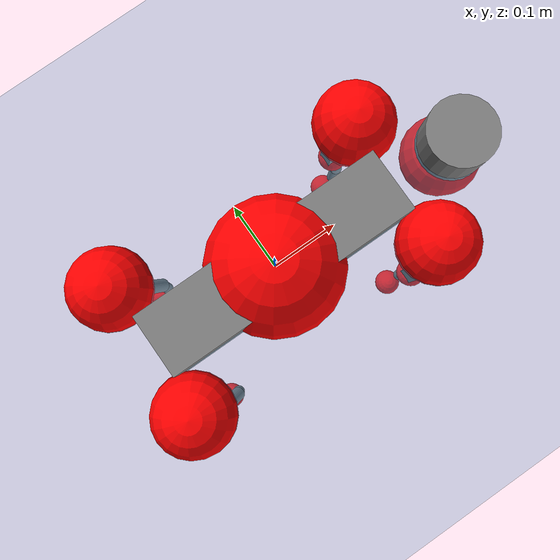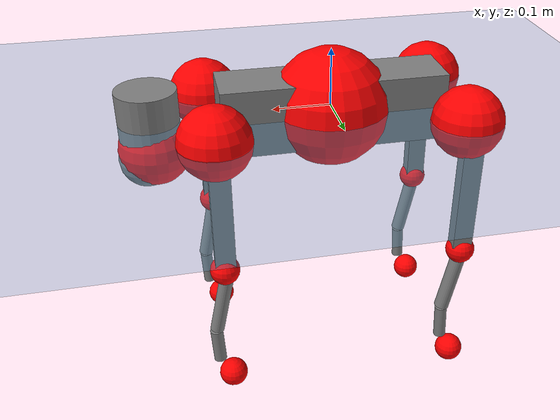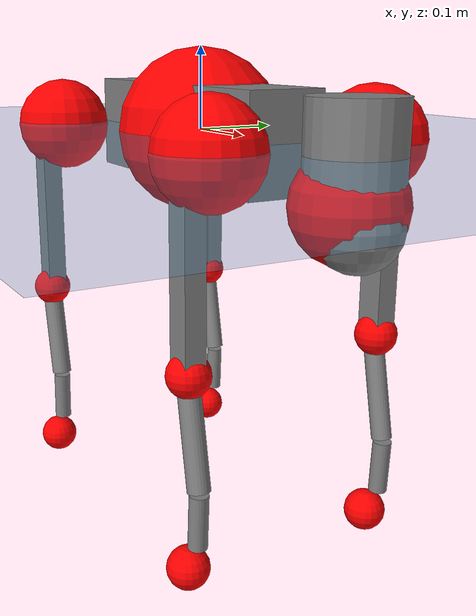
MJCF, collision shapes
<mujoco model="go2">
  <compiler angle="radian" assetdir="assets" balanceinertia="true" inertiafromgeom="false"/>

  <option timestep="0.005" density="1.2" viscosity="2e-05"/>

  <size nkey="1"/>

  <visual>
    <quality shadowsize="8192"/>
    <map shadowclip="0.5"/>
  </visual>

  <default>
    <default class="/">
      <geom contype="0" conaffinity="0" group="1" solref="-1000 -80"/>
      <site size="0.01 0.005 0.005" group="5"/>
      <general forcelimited="true" biastype="affine" gainprm="20" biasprm="0 -20 -0.5"/>
      <default class="go2">
        <joint armature="0.01" damping="0.01" frictionloss="0.2"/>
        <geom condim="1" margin="0.001"/>
        <default class="visual">
          <geom type="mesh" group="2"/>
        </default>
        <default class="collision">
          <geom group="3"/>
          <default class="foot">
            <geom size="0.022 0 0" condim="6" priority="1" friction="0.8 0.02 0.01" solimp="0.015 1 0.022"/>
          </default>
        </default>
        <default class="reward_collision_sphere">
          <geom group="5" rgba="1 0 0 1"/>
        </default>
      </default>
    </default>
  </default>

  <asset>
    <texture type="skybox" colorspace="auto" name="//unnamed_texture_0" builtin="gradient" rgb1="0.95 0.95 0.95" rgb2="0.95 0.95 0.95" width="100" height="600"/>
    <texture type="2d" colorspace="auto" name="texplane" builtin="checker" rgb1="0.345 0.575 0.748" rgb2="0.345 0.575 0.748" markrgb="1 1 1" width="512" height="512"/>
    <material name="MatPlane" class="/" texture="texplane" texuniform="true" texrepeat="2 2" specular="0.9"/>
    <material name="metal" class="/" rgba="0.9 0.95 0.95 1"/>
    <material name="black" class="/" rgba="0 0 0 1"/>
    <material name="white" class="/"/>
    <material name="gray" class="/" rgba="0.671705 0.692426 0.77427 1"/>
    <mesh name="base_0" class="/" file="base_0.obj"/>
    <mesh name="base_1" class="/" file="base_1.obj"/>
    <mesh name="base_2" class="/" file="base_2.obj"/>
    <mesh name="base_3" class="/" file="base_3.obj"/>
    <mesh name="base_4" class="/" file="base_4.obj"/>
    <mesh name="hip_0" class="/" file="hip_0.obj"/>
    <mesh name="hip_1" class="/" file="hip_1.obj"/>
    <mesh name="thigh_0" class="/" file="thigh_0.obj"/>
    <mesh name="thigh_1" class="/" file="thigh_1.obj"/>
    <mesh name="thigh_mirror_0" class="/" file="thigh_mirror_0.obj"/>
    <mesh name="thigh_mirror_1" class="/" file="thigh_mirror_1.obj"/>
    <mesh name="calf_0" class="/" file="calf_0.obj"/>
    <mesh name="calf_1" class="/" file="calf_1.obj"/>
    <mesh name="calf_mirror_0" class="/" file="calf_mirror_0.obj"/>
    <mesh name="calf_mirror_1" class="/" file="calf_mirror_1.obj"/>
    <mesh name="foot" class="/" file="foot.obj"/>
  </asset>

  <worldbody>
    <geom name="floor" class="/" size="100 100 0.125" type="plane" group="0" material="MatPlane"/>
    <light name="toplight_shadow" class="/" pos="0 0 5" dir="0.0990148 0.0990148 -0.990148" type="directional" ambient="0.04 0.04 0.04" diffuse="0.55 0.55 0.55" specular="0.12 0.12 0.12"/>
    <light name="toplight_fill" class="/" pos="0 0 5" dir="0.0990148 0.0990148 -0.990148" type="directional" castshadow="false" ambient="0.04 0.04 0.04" diffuse="0.3 0.3 0.3" specular="0.08 0.08 0.08"/>
    <body name="trunk" childclass="go2" pos="-0.00016781 -0.000471357 -0.00192321" quat="1 6.8399e-05 8.17036e-05 -1.94679e-05">
      <inertial pos="0.0211364 -0.000424075 -0.00315851" quat="-0.00133551 0.717381 0.0100882 0.696607" mass="7.42485" diaginertia="0.155961 0.0536617 0.0384199"/>
      <joint name="//unnamed_joint_0" type="free" armature="0" damping="0" frictionloss="0"/>
      <geom name="//unnamed_geom_1" class="visual" material="black" mesh="base_0"/>
      <geom name="//unnamed_geom_2" class="visual" material="black" mesh="base_1"/>
      <geom name="//unnamed_geom_3" class="visual" material="black" mesh="base_2"/>
      <geom name="//unnamed_geom_4" class="visual" material="white" mesh="base_3"/>
      <geom name="//unnamed_geom_5" class="visual" material="gray" mesh="base_4"/>
      <geom name="trunk_1" class="collision" size="0.191091 0.0474933 0.0579062" type="box"/>
      <geom name="trunk_2" class="collision" size="0.0507949 0.0457154" pos="0.304806 0 0.010933" type="cylinder"/>
      <geom name="trunk_3" class="collision" size="0.0477472" pos="0.313362 0 -0.0655978"/>
      <geom name="//unnamed_geom_9" class="reward_collision_sphere" size="0.10159"/>
      <geom name="//unnamed_geom_10" class="reward_collision_sphere" size="0.0609539" pos="0.299458 0 -0.0491983"/>
      <site name="imu" pos="-0.0210116 -0.00341223 0.0479871" size="0.010159"/>
      <camera name="track" pos="0 -1.76981 0" quat="0.707107 0.707107 0 0" mode="trackcom"/>
      <camera name="ego_camera" pos="0.333682 0 0.0491983" quat="-0.5 -0.5 0.5 0.5"/>
      <body name="FL_hip" pos="0.207201 0.0397921 0.00253369" quat="0.999999 0.00104138 0.00017764 -0.000759286">
        <inertial pos="-0.00561984 -0.000521639 0.000208777" quat="0.498088 0.499033 0.496465 0.506355" mass="0.719375" diaginertia="0.00125633 0.00033007 0.000782449"/>
        <joint name="FL_hip_joint" pos="0 0 0" axis="0.999989 -0.0021689 0.00416061" range="-1.04136 1.10125" armature="0.00986185" damping="0.0204748" frictionloss="0.190158"/>
        <geom name="//unnamed_geom_11" class="visual" material="metal" mesh="hip_0"/>
        <geom name="//unnamed_geom_12" class="visual" material="gray" mesh="hip_1"/>
        <geom name="//unnamed_geom_13" class="collision" size="0.0467313 0.020318" pos="0 0.0707924 0" quat="0.707107 0.707107 0 0" type="cylinder"/>
        <geom name="//unnamed_geom_14" class="reward_collision_sphere" size="0.0609539" pos="0 0.0619434 0"/>
        <body name="FL_thigh" pos="-0.000821057 0.0829545 0.00287438" quat="1 -0.000475225 0.000107321 -0.000605025">
          <inertial pos="-0.00137113 -0.0199173 -0.0356962" quat="0.82883 0.0942043 -0.0137875 0.551341" mass="1.23457" diaginertia="0.00827124 0.00314888 0.00134172"/>
          <joint name="FL_thigh_joint" pos="0 0 0" axis="0.00035115 0.999937 0.0112279" stiffness="0.00894152" range="-1.61027 3.53444" armature="0.0106806" damping="0" frictionloss="0.19979"/>
          <geom name="//unnamed_geom_15" class="visual" material="metal" mesh="thigh_0"/>
          <geom name="//unnamed_geom_16" class="visual" material="gray" mesh="thigh_1"/>
          <geom name="//unnamed_geom_17" class="collision" size="0.108193 0.0124448 0.0172703" pos="0 0 -0.116436" quat="0.707107 0 0.707107 0" type="box"/>
          <body name="FL_calf" pos="0.00106385 -0.000312128 -0.231787" quat="1 -0.000309618 0.000291507 0.000464962">
            <inertial pos="0.00471116 9.50242e-05 -0.156466" quat="0.706758 0.00984763 -0.000793213 0.707387" mass="0.247564" diaginertia="0.00201115 0.000794563 7.85529e-05"/>
            <joint name="FL_calf_joint" pos="0 0 0" axis="-0.0459356 0.998914 0.00779198" stiffness="0.000646217" range="-2.76629 -0.782654" armature="0.0115045" damping="0.0092079" frictionloss="0.226283"/>
            <geom name="//unnamed_geom_18" class="visual" material="gray" mesh="calf_0"/>
            <geom name="//unnamed_geom_19" class="visual" material="black" mesh="calf_1"/>
            <geom name="FL_calf0" class="collision" size="0.0121908 0.0609539" pos="0.00855595 0 -0.0655978" quat="0.994493 0 -0.104807 0" type="cylinder"/>
            <geom name="//unnamed_geom_21" class="collision" size="0.0111749 0.0330167" pos="0.0213899 0 -0.161808" quat="0.999688 0 0.0249974 0" type="cylinder"/>
            <geom name="//unnamed_geom_22" class="visual" pos="0 0 -0.232872" quat="1 0 0 0" material="black" mesh="foot"/>
            <geom name="FL_foot" class="foot" size="0.0152242" pos="-0.00213899 0 -0.232872"/>
            <geom name="//unnamed_geom_24" class="reward_collision_sphere" size="0.0253975"/>
            <geom name="//unnamed_geom_25" class="reward_collision_sphere" size="0.0253975" pos="-0.00213899 0 -0.232872"/>
            <site name="FL_foot" class="foot" pos="-0.00213899 0 -0.232872" size="0.010159"/>
          </body>
        </body>
      </body>
      <body name="FR_hip" pos="0.205015 -0.0409106 -0.00209388" quat="1 2.99726e-05 3.04617e-05 8.3601e-05">
        <inertial pos="-0.00526572 -0.00161054 -0.000805595" quat="0.499754 0.502107 0.500717 0.49741" mass="0.712632" diaginertia="0.00122876 0.000343277 0.000774325"/>
        <joint name="FR_hip_joint" pos="0 0 0" axis="0.999911 -0.0085812 0.0102082" range="-1.05056 1.06443" armature="0.00998244" damping="0" frictionloss="0.200614"/>
        <geom name="//unnamed_geom_26" class="visual" pos="0 -1.81542e-09 -7.78669e-08" quat="4.63268e-05 1 0 0" material="metal" mesh="hip_0"/>
        <geom name="//unnamed_geom_27" class="visual" pos="0 -2.94301e-09 1.92595e-07" quat="4.63268e-05 1 0 0" material="gray" mesh="hip_1"/>
        <geom name="//unnamed_geom_28" class="collision" size="0.0467313 0.020318" pos="0 -0.0707924 0" quat="0.707107 0.707107 0 0" type="cylinder"/>
        <geom name="//unnamed_geom_29" class="reward_collision_sphere" size="0.0609539" pos="0 -0.0619434 0"/>
        <body name="FR_thigh" pos="-0.0026471 -0.0847348 -0.00177854" quat="1 -3.22743e-05 0.000445734 0.000559623">
          <inertial pos="-0.0041356 0.0205746 -0.0355447" quat="0.55048 -0.0224139 0.085674 0.830138" mass="1.19254" diaginertia="0.00816474 0.00320037 0.00139434"/>
          <joint name="FR_thigh_joint" pos="0 0 0" axis="0.000102732 -0.999997 -0.00239415" range="-3.51353 1.61064" armature="0.0101307" damping="0.000983946" frictionloss="0.182042"/>
          <geom name="//unnamed_geom_30" class="visual" material="metal" mesh="thigh_mirror_0"/>
          <geom name="//unnamed_geom_31" class="visual" material="gray" mesh="thigh_mirror_1"/>
          <geom name="//unnamed_geom_32" class="collision" size="0.108193 0.0124448 0.0172703" pos="0 0 -0.116436" quat="0.707107 0 0.707107 0" type="box"/>
          <body name="FR_calf" pos="0.000157945 0.000542354 -0.229858" quat="1 0.000174319 -0.000157827 -0.000109245">
            <inertial pos="0.00695303 0.00161064 -0.154847" quat="0.701345 -0.0113065 -0.00845444 0.712682" mass="0.248875" diaginertia="0.00210052 0.000778518 8.18066e-05"/>
            <joint name="FR_calf_joint" pos="0 0 0" axis="-0.00406523 -0.999983 0.00422484" stiffness="0.00120274" range="0.788175 2.7656" armature="0.00889267" damping="0.0134606" frictionloss="0.211239"/>
            <geom name="//unnamed_geom_33" class="visual" material="gray" mesh="calf_mirror_0"/>
            <geom name="//unnamed_geom_34" class="visual" material="black" mesh="calf_mirror_1"/>
            <geom name="FR_calf0" class="collision" size="0.0132067 0.0609539" pos="0.0106949 0 -0.0655978" quat="0.995004 0 -0.0998334 0" type="cylinder"/>
            <geom name="//unnamed_geom_36" class="collision" size="0.0111749 0.0330167" pos="0.0213899 0 -0.161808" quat="0.999688 0 0.0249974 0" type="cylinder"/>
            <geom name="//unnamed_geom_37" class="visual" pos="0 0 -0.232872" quat="1 0 0 0" material="black" mesh="foot"/>
            <geom name="FR_foot" class="foot" size="0.0242435" pos="-0.00213899 0 -0.232872"/>
            <geom name="//unnamed_geom_39" class="reward_collision_sphere" size="0.0253975"/>
            <geom name="//unnamed_geom_40" class="reward_collision_sphere" size="0.0253975" pos="-0.00213899 0 -0.232872"/>
            <site name="FR_foot" class="foot" pos="-0.00213899 0 -0.232872" size="0.010159"/>
          </body>
        </body>
      </body>
      <body name="RL_hip" pos="-0.205743 0.0437303 -0.00166878" quat="0.999999 -0.000219212 -0.000987693 -0.000708544">
        <inertial pos="0.00846023 0.00177636 -0.000722999" quat="0.508519 0.488856 0.503578 0.498837" mass="0.718348" diaginertia="0.00118596 0.000316994 0.000739928"/>
        <joint name="RL_hip_joint" pos="0 0 0" axis="-0.999985 0.00437029 0.00318926" range="-0.99275 1.08775" armature="0.0100711" damping="0" frictionloss="0.212163"/>
        <geom name="//unnamed_geom_41" class="visual" pos="2.07354e-10 0 4.06462e-08" quat="4.63268e-05 0 1 0" material="metal" mesh="hip_0"/>
        <geom name="//unnamed_geom_42" class="visual" pos="3.36146e-10 0 3.60474e-08" quat="4.63268e-05 0 1 0" material="gray" mesh="hip_1"/>
        <geom name="//unnamed_geom_43" class="collision" size="0.0467313 0.020318" pos="0 0.0707924 0" quat="0.707107 0.707107 0 0" type="cylinder"/>
        <geom name="//unnamed_geom_44" class="reward_collision_sphere" size="0.0609539" pos="0 0.0619434 0"/>
        <body name="RL_thigh" pos="-0.00225987 0.0859463 -0.00255728" quat="1 3.07308e-05 -3.82395e-05 -4.11135e-07">
          <inertial pos="-0.00339397 -0.0185161 -0.0365539" quat="0.829808 0.0833532 -0.0191929 0.551455" mass="1.20891" diaginertia="0.00828893 0.00306757 0.00141098"/>
          <joint name="RL_thigh_joint" pos="0 0 0" axis="0.00237695 0.999997 0.000533612" stiffness="0.00828293" range="-0.537504 4.53227" armature="0.00879798" damping="0" frictionloss="0.230286"/>
          <geom name="//unnamed_geom_45" class="visual" material="metal" mesh="thigh_0"/>
          <geom name="//unnamed_geom_46" class="visual" material="gray" mesh="thigh_1"/>
          <geom name="//unnamed_geom_47" class="collision" size="0.108193 0.0124448 0.0172703" pos="0 0 -0.116436" quat="0.707107 0 0.707107 0" type="box"/>
          <body name="RL_calf" pos="-0.00222746 -0.00171075 -0.235854" quat="0.999999 0.000995048 -0.000602569 0.000364366">
            <inertial pos="0.00685475 -0.000231426 -0.153671" quat="0.708248 0.00751591 0.00245709 0.705919" mass="0.252776" diaginertia="0.00206438 0.000795837 8.41573e-05"/>
            <joint name="RL_calf_joint" pos="0 0 0" axis="0.00133782 0.999986 0.00519127" range="-2.72749 -0.830323" armature="0.00950466" damping="0.000391869" frictionloss="0.225172"/>
            <geom name="//unnamed_geom_48" class="visual" material="gray" mesh="calf_0"/>
            <geom name="//unnamed_geom_49" class="visual" material="black" mesh="calf_1"/>
            <geom name="RL_calf0" class="collision" size="0.0132067 0.0609539" pos="0.0106949 0 -0.0655978" quat="0.995004 0 -0.0998334 0" type="cylinder"/>
            <geom name="//unnamed_geom_51" class="collision" size="0.0111749 0.0330167" pos="0.0213899 0 -0.161808" quat="0.999688 0 0.0249974 0" type="cylinder"/>
            <geom name="//unnamed_geom_52" class="visual" pos="0 0 -0.232872" quat="1 0 0 0" material="black" mesh="foot"/>
            <geom name="RL_foot" class="foot" size="0.0175167" pos="-0.00213899 0 -0.232872"/>
            <geom name="//unnamed_geom_54" class="reward_collision_sphere" size="0.0253975"/>
            <geom name="//unnamed_geom_55" class="reward_collision_sphere" size="0.0253975" pos="-0.00213899 0 -0.232872"/>
            <site name="RL_foot" class="foot" pos="-0.00213899 0 -0.232872" size="0.010159"/>
          </body>
        </body>
      </body>
      <body name="RR_hip" pos="-0.207284 -0.0414369 -0.00321091" quat="1 0.000519202 0.000282892 0.000364714">
        <inertial pos="0.00598099 -0.000929638 0.000484833" quat="0.505294 0.496288 0.489398 0.50879" mass="0.684832" diaginertia="0.00119086 0.000313364 0.000731901"/>
        <joint name="RR_hip_joint" pos="0 0 0" axis="-0.999998 -0.00210599 0.000228665" range="-1.06213 1.02375" armature="0.0101546" damping="0.00702459" frictionloss="0.204392"/>
        <geom name="//unnamed_geom_56" class="visual" pos="-2.13745e-10 -1.81542e-09 1.18513e-07" quat="2.14617e-09 4.63268e-05 4.63268e-05 -1" material="metal" mesh="hip_0"/>
        <geom name="//unnamed_geom_57" class="visual" pos="-3.2034e-10 -2.94301e-09 -1.56547e-07" quat="2.14617e-09 4.63268e-05 4.63268e-05 -1" material="gray" mesh="hip_1"/>
        <geom name="//unnamed_geom_58" class="collision" size="0.0467313 0.020318" pos="0 -0.0707924 0" quat="0.707107 0.707107 0 0" type="cylinder"/>
        <geom name="//unnamed_geom_59" class="reward_collision_sphere" size="0.0609539" pos="0 -0.0619434 0"/>
        <body name="RR_thigh" pos="3.96238e-05 -0.0874009 -0.000777108" quat="1 -0.000426263 0.000165162 1.51274e-05">
          <inertial pos="-0.00210889 0.018209 -0.0344516" quat="0.551925 -0.0189855 0.0840394 0.829431" mass="1.2477" diaginertia="0.00843198 0.00319916 0.00143267"/>
          <joint name="RR_thigh_joint" pos="0 0 0" axis="-0.000540351 -0.999973 -0.00732704" stiffness="0.00375903" range="-4.55273 0.53084" armature="0.00874674" damping="0" frictionloss="0.201315"/>
          <geom name="//unnamed_geom_60" class="visual" material="metal" mesh="thigh_mirror_0"/>
          <geom name="//unnamed_geom_61" class="visual" material="gray" mesh="thigh_mirror_1"/>
          <geom name="//unnamed_geom_62" class="collision" size="0.108193 0.0124448 0.0172703" pos="0 0 -0.116436" quat="0.707107 0 0.707107 0" type="box"/>
          <body name="RR_calf" pos="0.000279578 -0.00282519 -0.23054" quat="0.999999 0.000296136 -0.00125584 7.57285e-05">
            <inertial pos="0.00380687 0.000796196 -0.155516" quat="0.706059 -0.00306371 0.00240171 0.708142" mass="0.252925" diaginertia="0.00200921 0.000799805 8.16801e-05"/>
            <joint name="RR_calf_joint" pos="0 0 0" axis="0.00250799 -0.999997 -0.00013812" stiffness="0.00293017" range="0.812197 2.6781" armature="0.0105863" damping="0.0268987" frictionloss="0.20286"/>
            <geom name="//unnamed_geom_63" class="visual" material="gray" mesh="calf_mirror_0"/>
            <geom name="//unnamed_geom_64" class="visual" material="black" mesh="calf_mirror_1"/>
            <geom name="RR_calf0" class="collision" size="0.0132067 0.0609539" pos="0.0106949 0 -0.0655978" quat="0.995004 0 -0.0998334 0" type="cylinder"/>
            <geom name="//unnamed_geom_66" class="collision" size="0.0111749 0.0330167" pos="0.0213899 0 -0.161808" quat="0.999688 0 0.0249974 0" type="cylinder"/>
            <geom name="//unnamed_geom_67" class="visual" pos="0 0 -0.232872" quat="1 0 0 0" material="black" mesh="foot"/>
            <geom name="RR_foot" class="foot" size="0.0205855" pos="-0.00213899 0 -0.232872"/>
            <geom name="//unnamed_geom_69" class="reward_collision_sphere" size="0.0253975"/>
            <geom name="//unnamed_geom_70" class="reward_collision_sphere" size="0.0253975" pos="-0.00213899 0 -0.232872"/>
            <site name="RR_foot" class="foot" pos="-0.00213899 0 -0.232872" size="0.010159"/>
          </body>
        </body>
      </body>
    </body>
  </worldbody>

  <contact>
    <pair class="/" geom1="floor" geom2="FL_foot" name="//unnamed_contact_0"/>
    <pair class="/" geom1="floor" geom2="FR_foot" name="//unnamed_contact_1"/>
    <pair class="/" geom1="floor" geom2="RL_foot" name="//unnamed_contact_2"/>
    <pair class="/" geom1="floor" geom2="RR_foot" name="//unnamed_contact_3"/>
  </contact>

  <actuator>
    <general name="FL_hip" class="/" joint="FL_hip_joint" forcerange="-23.0714 23.0714" gainprm="21.3621" biasprm="0 -21.3621 -0.478801"/>
    <general name="FL_thigh" class="/" joint="FL_thigh_joint" forcerange="-21.7936 21.7936" gainprm="21.3621" biasprm="0 -21.3621 -0.478801"/>
    <general name="FL_calf" class="/" joint="FL_calf_joint" forcerange="-42.3731 42.3731" gainprm="21.3621" biasprm="0 -21.3621 -0.478801"/>
    <general name="FR_hip" class="/" joint="FR_hip_joint" forcerange="-21.9299 21.9299" gainprm="21.3621" biasprm="0 -21.3621 -0.478801"/>
    <general name="FR_thigh" class="/" joint="FR_thigh_joint" forcerange="-26.501 26.501" gainprm="21.3621" biasprm="0 -21.3621 -0.478801"/>
    <general name="FR_calf" class="/" joint="FR_calf_joint" forcerange="-45.1141 45.1141" gainprm="21.3621" biasprm="0 -21.3621 -0.478801"/>
    <general name="RL_hip" class="/" joint="RL_hip_joint" forcerange="-24.0991 24.0991" gainprm="21.3621" biasprm="0 -21.3621 -0.478801"/>
    <general name="RL_thigh" class="/" joint="RL_thigh_joint" forcerange="-23.8531 23.8531" gainprm="21.3621" biasprm="0 -21.3621 -0.478801"/>
    <general name="RL_calf" class="/" joint="RL_calf_joint" forcerange="-42.7654 42.7654" gainprm="21.3621" biasprm="0 -21.3621 -0.478801"/>
    <general name="RR_hip" class="/" joint="RR_hip_joint" forcerange="-21.7216 21.7216" gainprm="21.3621" biasprm="0 -21.3621 -0.478801"/>
    <general name="RR_thigh" class="/" joint="RR_thigh_joint" forcerange="-24.7021 24.7021" gainprm="21.3621" biasprm="0 -21.3621 -0.478801"/>
    <general name="RR_calf" class="/" joint="RR_calf_joint" forcerange="-47.4351 47.4351" gainprm="21.3621" biasprm="0 -21.3621 -0.478801"/>
  </actuator>

  <sensor>
    <gyro site="imu" name="imu_angular_velocity"/>
    <velocimeter site="imu" name="imu_linear_velocity"/>
    <framelinvel objtype="site" objname="FL_foot" name="FL_foot_global_linear_velocity"/>
    <framelinvel objtype="site" objname="FR_foot" name="FR_foot_global_linear_velocity"/>
    <framelinvel objtype="site" objname="RL_foot" name="RL_foot_global_linear_velocity"/>
    <framelinvel objtype="site" objname="RR_foot" name="RR_foot_global_linear_velocity"/>
  </sensor>

  <keyframe>
    <key name="home" qpos="0 0 0.325 1 0 0 0 0.1 0.8 -1.5 -0.1 -0.8 1.5 -0.1 0.8 -1.5 0.1 -0.8 1.5"/>
  </keyframe>
</mujoco>
